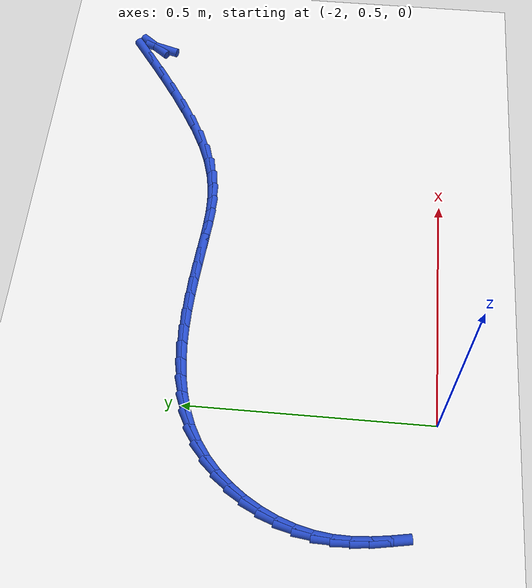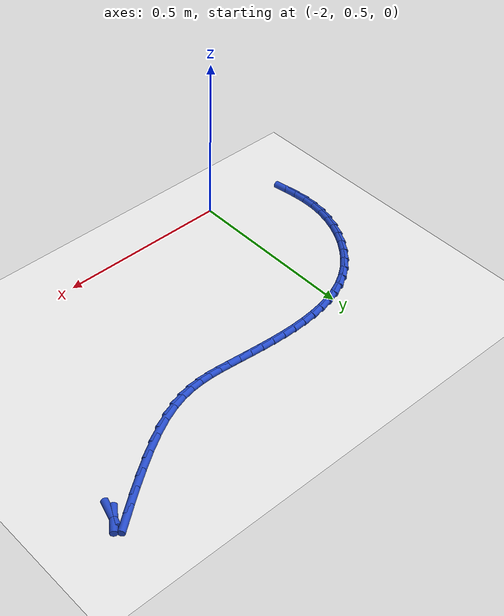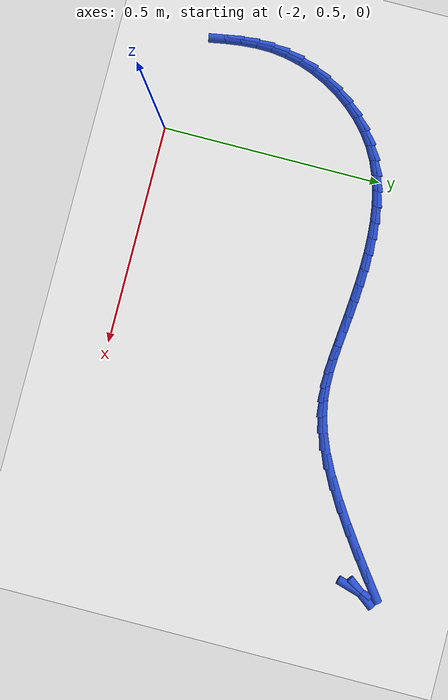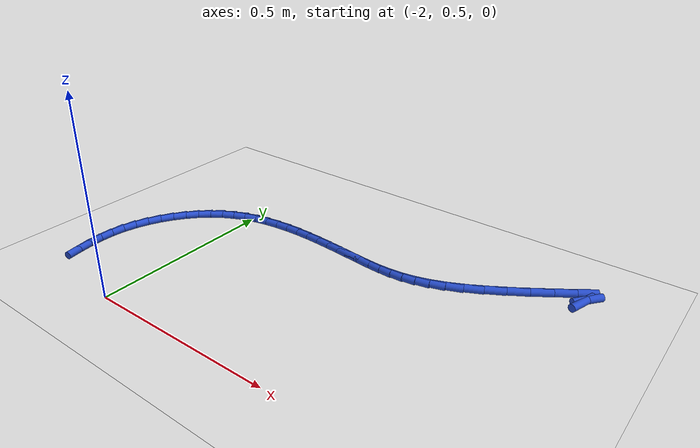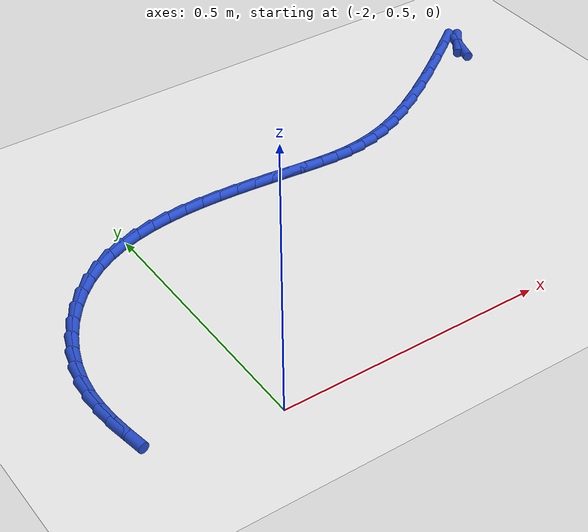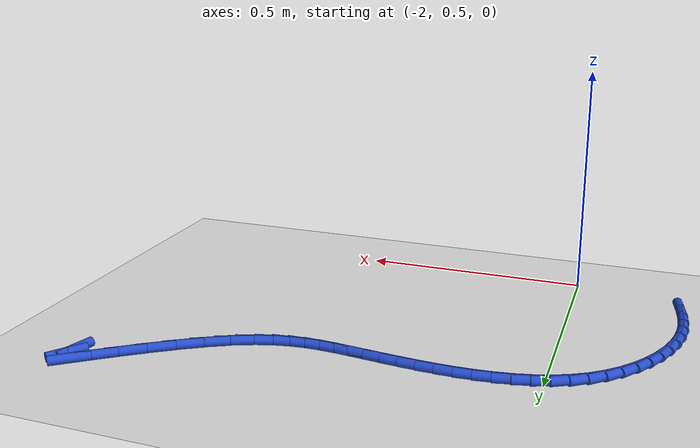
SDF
<sdf version="1.6">
 <world name="default">
  <model name="ground_plane">
   <static>1</static>
   <link name="link">
    <collision name="collision">
     <geometry><plane><normal>0 0 1</normal><size>100 100</size></plane></geometry>
     <surface><friction><ode><mu>100</mu><mu2>50</mu2></ode></friction></surface>
    </collision>
    <visual name="visual">
     <cast_shadows>0</cast_shadows>
     <geometry><plane><normal>0 0 1</normal><size>100 100</size></plane></geometry>
     <material>
      <script><uri>file://media/materials/scripts/gazebo.material</uri><name>Gazebo/WhiteGlow</name></script>
     </material>
    </visual>
   </link>
  </model>
  <model name="line">
   <link name="link_52">
    <pose>-1.1089232236960553 1.1660827350208425 0.01 0 1.57 1.2835550571192555</pose>
    <collision name="collision">
     <geometry><cylinder><radius>0.01</radius><length>0.08</length></cylinder></geometry>
    </collision>
    <visual name="visual">
     <material>
      <script><name>Gazebo/Blue</name><uri>file://media/materials/scripts/gazebo.material</uri></script>
     </material>
     <geometry><cylinder><radius>0.01</radius><length>0.08</length></cylinder></geometry>
    </visual>
   </link>
   <link name="link_53">
    <pose>-1.1039916155793819 1.1827768003942316 0.01 0 1.57 0.9191735991039887</pose>
    <collision name="collision">
     <geometry><cylinder><radius>0.01</radius><length>0.08</length></cylinder></geometry>
    </collision>
    <visual name="visual">
     <material>
      <script><name>Gazebo/Blue</name><uri>file://media/materials/scripts/gazebo.material</uri></script>
     </material>
     <geometry><cylinder><radius>0.01</radius><length>0.08</length></cylinder></geometry>
    </visual>
   </link>
   <link name="link_62">
    <pose>-1.1244872572329374 1.2010781025521085 0.01 0 1.57 0.6388672811564012</pose>
    <collision name="collision">
     <geometry><cylinder><radius>0.01</radius><length>0.08</length></cylinder></geometry>
    </collision>
    <visual name="visual">
     <material>
      <script><name>Gazebo/Blue</name><uri>file://media/materials/scripts/gazebo.material</uri></script>
     </material>
     <geometry><cylinder><radius>0.01</radius><length>0.08</length></cylinder></geometry>
    </visual>
   </link>
   <link name="link_63">
    <pose>-1.1649722309578554 1.1710064847595392 0.01 0 1.57 0.6238630042924764</pose>
    <collision name="collision">
     <geometry><cylinder><radius>0.01</radius><length>0.08</length></cylinder></geometry>
    </collision>
    <visual name="visual">
     <material>
      <script><name>Gazebo/Blue</name><uri>file://media/materials/scripts/gazebo.material</uri></script>
     </material>
     <geometry><cylinder><radius>0.01</radius><length>0.08</length></cylinder></geometry>
    </visual>
   </link>
   <link name="link_64">
    <pose>-1.208779049391771 1.1394762201025725 0.01 0 1.57 0.602401411614445</pose>
    <collision name="collision">
     <geometry><cylinder><radius>0.01</radius><length>0.08</length></cylinder></geometry>
    </collision>
    <visual name="visual">
     <material>
      <script><name>Gazebo/Blue</name><uri>file://media/materials/scripts/gazebo.material</uri></script>
     </material>
     <geometry><cylinder><radius>0.01</radius><length>0.08</length></cylinder></geometry>
    </visual>
   </link>
   <link name="link_65">
    <pose>-1.2544067684531965 1.1080994981370824 0.01 0 1.57 0.5724638955727281</pose>
    <collision name="collision">
     <geometry><cylinder><radius>0.01</radius><length>0.08</length></cylinder></geometry>
    </collision>
    <visual name="visual">
     <material>
      <script><name>Gazebo/Blue</name><uri>file://media/materials/scripts/gazebo.material</uri></script>
     </material>
     <geometry><cylinder><radius>0.01</radius><length>0.08</length></cylinder></geometry>
    </visual>
   </link>
   <link name="link_66">
    <pose>-1.3003544440606425 1.0784885084189424 0.01 0 1.57 0.5300582631437174</pose>
    <collision name="collision">
     <geometry><cylinder><radius>0.01</radius><length>0.08</length></cylinder></geometry>
    </collision>
    <visual name="visual">
     <material>
      <script><name>Gazebo/Blue</name><uri>file://media/materials/scripts/gazebo.material</uri></script>
     </material>
     <geometry><cylinder><radius>0.01</radius><length>0.08</length></cylinder></geometry>
    </visual>
   </link>
   <link name="link_67">
    <pose>-1.3451211321326193 1.0522554405040274 0.01 0 1.57 0.46765626670080074</pose>
    <collision name="collision">
     <geometry><cylinder><radius>0.01</radius><length>0.08</length></cylinder></geometry>
    </collision>
    <visual name="visual">
     <material>
      <script><name>Gazebo/Blue</name><uri>file://media/materials/scripts/gazebo.material</uri></script>
     </material>
     <geometry><cylinder><radius>0.01</radius><length>0.08</length></cylinder></geometry>
    </visual>
   </link>
   <link name="link_68">
    <pose>-1.3872240800891007 1.0309925713047705 0.01 0 1.57 0.3829734330935997</pose>
    <collision name="collision">
     <geometry><cylinder><radius>0.01</radius><length>0.08</length></cylinder></geometry>
    </collision>
    <visual name="visual">
     <material>
      <script><name>Gazebo/Blue</name><uri>file://media/materials/scripts/gazebo.material</uri></script>
     </material>
     <geometry><cylinder><radius>0.01</radius><length>0.08</length></cylinder></geometry>
    </visual>
   </link>
   <link name="link_69">
    <pose>-1.4260347762476588 1.0153571150373355 0.01 0 1.57 0.28738206447069775</pose>
    <collision name="collision">
     <geometry><cylinder><radius>0.01</radius><length>0.08</length></cylinder></geometry>
    </collision>
    <visual name="visual">
     <material>
      <script><name>Gazebo/Blue</name><uri>file://media/materials/scripts/gazebo.material</uri></script>
     </material>
     <geometry><cylinder><radius>0.01</radius><length>0.08</length></cylinder></geometry>
    </visual>
   </link>
   <link name="link_70">
    <pose>-1.4621278611275925 1.004689300574609 0.01 0 1.57 0.1875162440671363</pose>
    <collision name="collision">
     <geometry><cylinder><radius>0.01</radius><length>0.08</length></cylinder></geometry>
    </collision>
    <visual name="visual">
     <material>
      <script><name>Gazebo/Blue</name><uri>file://media/materials/scripts/gazebo.material</uri></script>
     </material>
     <geometry><cylinder><radius>0.01</radius><length>0.08</length></cylinder></geometry>
    </visual>
   </link>
   <link name="link_71">
    <pose>-1.4961685250682584 0.998230239831801 0.01 0 1.57 0.09189598982674581</pose>
    <collision name="collision">
     <geometry><cylinder><radius>0.01</radius><length>0.08</length></cylinder></geometry>
    </collision>
    <visual name="visual">
     <material>
      <script><name>Gazebo/Blue</name><uri>file://media/materials/scripts/gazebo.material</uri></script>
     </material>
     <geometry><cylinder><radius>0.01</radius><length>0.08</length></cylinder></geometry>
    </visual>
   </link>
   <link name="link_72">
    <pose>-1.5288219584090146 0.9952210447241225 0.01 0 1.57 0.009965334823651088</pose>
    <collision name="collision">
     <geometry><cylinder><radius>0.01</radius><length>0.08</length></cylinder></geometry>
    </collision>
    <visual name="visual">
     <material>
      <script><name>Gazebo/Blue</name><uri>file://media/materials/scripts/gazebo.material</uri></script>
     </material>
     <geometry><cylinder><radius>0.01</radius><length>0.08</length></cylinder></geometry>
    </visual>
   </link>
   <link name="link_73">
    <pose>-1.5607533514892191 0.994902827166784 0.01 0 1.57 -0.05058880092744485</pose>
    <collision name="collision">
     <geometry><cylinder><radius>0.01</radius><length>0.08</length></cylinder></geometry>
    </collision>
    <visual name="visual">
     <material>
      <script><name>Gazebo/Blue</name><uri>file://media/materials/scripts/gazebo.material</uri></script>
     </material>
     <geometry><cylinder><radius>0.01</radius><length>0.08</length></cylinder></geometry>
    </visual>
   </link>
   <link name="link_74">
    <pose>-1.59262789464823 0.9965166990749962 0.01 0 1.57 -0.08559166201118545</pose>
    <collision name="collision">
     <geometry><cylinder><radius>0.01</radius><length>0.08</length></cylinder></geometry>
    </collision>
    <visual name="visual">
     <material>
      <script><name>Gazebo/Blue</name><uri>file://media/materials/scripts/gazebo.material</uri></script>
     </material>
     <geometry><cylinder><radius>0.01</radius><length>0.08</length></cylinder></geometry>
    </visual>
   </link>
   <link name="link_75">
    <pose>-1.6251107782254048 0.9993037723639695 0.01 0 1.57 -0.09699294355219688</pose>
    <collision name="collision">
     <geometry><cylinder><radius>0.01</radius><length>0.08</length></cylinder></geometry>
    </collision>
    <visual name="visual">
     <material>
      <script><name>Gazebo/Blue</name><uri>file://media/materials/scripts/gazebo.material</uri></script>
     </material>
     <geometry><cylinder><radius>0.01</radius><length>0.08</length></cylinder></geometry>
    </visual>
   </link>
   <link name="link_76">
    <pose>-1.6587249623088898 1.0025743736650434 0.01 0 1.57 -0.09657853734811621</pose>
    <collision name="collision">
     <geometry><cylinder><radius>0.01</radius><length>0.08</length></cylinder></geometry>
    </collision>
    <visual name="visual">
     <material>
      <script><name>Gazebo/Blue</name><uri>file://media/materials/scripts/gazebo.material</uri></script>
     </material>
     <geometry><cylinder><radius>0.01</radius><length>0.08</length></cylinder></geometry>
    </visual>
   </link>
   <link name="link_77">
    <pose>-1.693389572106803 1.005932678909928 0.01 0 1.57 -0.0879541873327349</pose>
    <collision name="collision">
     <geometry><cylinder><radius>0.01</radius><length>0.08</length></cylinder></geometry>
    </collision>
    <visual name="visual">
     <material>
      <script><name>Gazebo/Blue</name><uri>file://media/materials/scripts/gazebo.material</uri></script>
     </material>
     <geometry><cylinder><radius>0.01</radius><length>0.08</length></cylinder></geometry>
    </visual>
   </link>
   <link name="link_78">
    <pose>-1.7288635165709654 1.0090608314290013 0.01 0 1.57 -0.0714648572897058</pose>
    <collision name="collision">
     <geometry><cylinder><radius>0.01</radius><length>0.08</length></cylinder></geometry>
    </collision>
    <visual name="visual">
     <material>
      <script><name>Gazebo/Blue</name><uri>file://media/materials/scripts/gazebo.material</uri></script>
     </material>
     <geometry><cylinder><radius>0.01</radius><length>0.08</length></cylinder></geometry>
    </visual>
   </link>
   <link name="link_79">
    <pose>-1.7649057034720708 1.0116409751274225 0.01 0 1.57 -0.04710041621450012</pose>
    <collision name="collision">
     <geometry><cylinder><radius>0.01</radius><length>0.08</length></cylinder></geometry>
    </collision>
    <visual name="visual">
     <material>
      <script><name>Gazebo/Blue</name><uri>file://media/materials/scripts/gazebo.material</uri></script>
     </material>
     <geometry><cylinder><radius>0.01</radius><length>0.08</length></cylinder></geometry>
    </visual>
   </link>
   <link name="link_80">
    <pose>-1.801275040580813 1.0133552539103508 0.01 0 1.57 -0.014552587274043826</pose>
    <collision name="collision">
     <geometry><cylinder><radius>0.01</radius><length>0.08</length></cylinder></geometry>
    </collision>
    <visual name="visual">
     <material>
      <script><name>Gazebo/Blue</name><uri>file://media/materials/scripts/gazebo.material</uri></script>
     </material>
     <geometry><cylinder><radius>0.01</radius><length>0.08</length></cylinder></geometry>
    </visual>
   </link>
   <link name="link_81">
    <pose>-1.8377304356678852 1.013885811682946 0.01 0 1.57 0.026743200578914498</pose>
    <collision name="collision">
     <geometry><cylinder><radius>0.01</radius><length>0.08</length></cylinder></geometry>
    </collision>
    <visual name="visual">
     <material>
      <script><name>Gazebo/Blue</name><uri>file://media/materials/scripts/gazebo.material</uri></script>
     </material>
     <geometry><cylinder><radius>0.01</radius><length>0.08</length></cylinder></geometry>
    </visual>
   </link>
   <link name="link_82">
    <pose>-1.8740307965039829 1.0129147923503679 0.01 0 1.57 0.07756339814384612</pose>
    <collision name="collision">
     <geometry><cylinder><radius>0.01</radius><length>0.08</length></cylinder></geometry>
    </collision>
    <visual name="visual">
     <material>
      <script><name>Gazebo/Blue</name><uri>file://media/materials/scripts/gazebo.material</uri></script>
     </material>
     <geometry><cylinder><radius>0.01</radius><length>0.08</length></cylinder></geometry>
    </visual>
   </link>
   <link name="link_83">
    <pose>-1.9099350308597987 1.0101243398177757 0.01 0 1.57 0.13882783263708748</pose>
    <collision name="collision">
     <geometry><cylinder><radius>0.01</radius><length>0.08</length></cylinder></geometry>
    </collision>
    <visual name="visual">
     <material>
      <script><name>Gazebo/Blue</name><uri>file://media/materials/scripts/gazebo.material</uri></script>
     </material>
     <geometry><cylinder><radius>0.01</radius><length>0.08</length></cylinder></geometry>
    </visual>
   </link>
   <link name="link_84">
    <pose>-1.945202046506027 1.0051965979903295 0.01 0 1.57 0.21147917627916138</pose>
    <collision name="collision">
     <geometry><cylinder><radius>0.01</radius><length>0.08</length></cylinder></geometry>
    </collision>
    <visual name="visual">
     <material>
      <script><name>Gazebo/Blue</name><uri>file://media/materials/scripts/gazebo.material</uri></script>
     </material>
     <geometry><cylinder><radius>0.01</radius><length>0.08</length></cylinder></geometry>
    </visual>
   </link>
   <link name="link_85">
    <pose>-1.9795907512133617 0.997813710773188 0.01 0 1.57 0.2962782658552341</pose>
    <collision name="collision">
     <geometry><cylinder><radius>0.01</radius><length>0.08</length></cylinder></geometry>
    </collision>
    <visual name="visual">
     <material>
      <script><name>Gazebo/Blue</name><uri>file://media/materials/scripts/gazebo.material</uri></script>
     </material>
     <geometry><cylinder><radius>0.01</radius><length>0.08</length></cylinder></geometry>
    </visual>
   </link>
   <link name="link_86">
    <pose>-2.012860052752496 0.9876578220715115 0.01 0 1.57 0.3934929147296885</pose>
    <collision name="collision">
     <geometry><cylinder><radius>0.01</radius><length>0.08</length></cylinder></geometry>
    </collision>
    <visual name="visual">
     <material>
      <script><name>Gazebo/Blue</name><uri>file://media/materials/scripts/gazebo.material</uri></script>
     </material>
     <geometry><cylinder><radius>0.01</radius><length>0.08</length></cylinder></geometry>
    </visual>
   </link>
   <link name="link_87">
    <pose>-2.044768858894125 0.9744110757904596 0.01 0 1.57 0.5025009001269432</pose>
    <collision name="collision">
     <geometry><cylinder><radius>0.01</radius><length>0.08</length></cylinder></geometry>
    </collision>
    <visual name="visual">
     <material>
      <script><name>Gazebo/Blue</name><uri>file://media/materials/scripts/gazebo.material</uri></script>
     </material>
     <geometry><cylinder><radius>0.01</radius><length>0.08</length></cylinder></geometry>
    </visual>
   </link>
   <link name="link_88">
    <pose>-2.0750760774089425 0.9577556158351914 0.01 0 1.57 0.6193607877290898</pose>
    <collision name="collision">
     <geometry><cylinder><radius>0.01</radius><length>0.08</length></cylinder></geometry>
    </collision>
    <visual name="visual">
     <material>
      <script><name>Gazebo/Blue</name><uri>file://media/materials/scripts/gazebo.material</uri></script>
     </material>
     <geometry><cylinder><radius>0.01</radius><length>0.08</length></cylinder></geometry>
    </visual>
   </link>
   <link name="link_89">
    <pose>-2.1035389151095023 0.9374631936762431 0.01 0 1.57 0.7314897636028319</pose>
    <collision name="collision">
     <geometry><cylinder><radius>0.01</radius><length>0.08</length></cylinder></geometry>
    </collision>
    <visual name="visual">
     <material>
      <script><name>Gazebo/Blue</name><uri>file://media/materials/scripts/gazebo.material</uri></script>
     </material>
     <geometry><cylinder><radius>0.01</radius><length>0.08</length></cylinder></geometry>
    </visual>
   </link>
   <link name="link_90">
    <pose>-2.129905256608932 0.9137966602273079 0.01 0 1.57 0.8366296568413774</pose>
    <collision name="collision">
     <geometry><cylinder><radius>0.01</radius><length>0.08</length></cylinder></geometry>
    </collision>
    <visual name="visual">
     <material>
      <script><name>Gazebo/Blue</name><uri>file://media/materials/scripts/gazebo.material</uri></script>
     </material>
     <geometry><cylinder><radius>0.01</radius><length>0.08</length></cylinder></geometry>
    </visual>
   </link>
   <link name="link_91">
    <pose>-2.153919809322553 0.887186243219639 0.01 0 1.57 0.9369337929835494</pose>
    <collision name="collision">
     <geometry><cylinder><radius>0.01</radius><length>0.08</length></cylinder></geometry>
    </collision>
    <visual name="visual">
     <material>
      <script><name>Gazebo/Blue</name><uri>file://media/materials/scripts/gazebo.material</uri></script>
     </material>
     <geometry><cylinder><radius>0.01</radius><length>0.08</length></cylinder></geometry>
    </visual>
   </link>
   <link name="link_92">
    <pose>-2.1753272779785413 0.8580623119450281 0.01 0 1.57 1.0346087631309084</pose>
    <collision name="collision">
     <geometry><cylinder><radius>0.01</radius><length>0.08</length></cylinder></geometry>
    </collision>
    <visual name="visual">
     <material>
      <script><name>Gazebo/Blue</name><uri>file://media/materials/scripts/gazebo.material</uri></script>
     </material>
     <geometry><cylinder><radius>0.01</radius><length>0.08</length></cylinder></geometry>
    </visual>
   </link>
   <link name="link_93">
    <pose>-2.193872367305073 0.8268552356952674 0.01 0 1.57 1.1318521778616348</pose>
    <collision name="collision">
     <geometry><cylinder><radius>0.01</radius><length>0.08</length></cylinder></geometry>
    </collision>
    <visual name="visual">
     <material>
      <script><name>Gazebo/Blue</name><uri>file://media/materials/scripts/gazebo.material</uri></script>
     </material>
     <geometry><cylinder><radius>0.01</radius><length>0.08</length></cylinder></geometry>
    </visual>
   </link>
   <link name="link_94">
    <pose>-2.2092997820303233 0.7939953837621498 0.01 0 1.57 1.2308408369947834</pose>
    <collision name="collision">
     <geometry><cylinder><radius>0.01</radius><length>0.08</length></cylinder></geometry>
    </collision>
    <visual name="visual">
     <material>
      <script><name>Gazebo/Blue</name><uri>file://media/materials/scripts/gazebo.material</uri></script>
     </material>
     <geometry><cylinder><radius>0.01</radius><length>0.08</length></cylinder></geometry>
    </visual>
   </link>
   <link name="link_95">
    <pose>-2.221354226882469 0.7599131254374675 0.01 0 1.57 1.3337241377597173</pose>
    <collision name="collision">
     <geometry><cylinder><radius>0.01</radius><length>0.08</length></cylinder></geometry>
    </collision>
    <visual name="visual">
     <material>
      <script><name>Gazebo/Blue</name><uri>file://media/materials/scripts/gazebo.material</uri></script>
     </material>
     <geometry><cylinder><radius>0.01</radius><length>0.08</length></cylinder></geometry>
    </visual>
   </link>
   <link name="link_96">
    <pose>-2.229780406589685 0.7250388300130117 0.01 0 1.57 1.4425577783988266</pose>
    <collision name="collision">
     <geometry><cylinder><radius>0.01</radius><length>0.08</length></cylinder></geometry>
    </collision>
    <visual name="visual">
     <material>
      <script><name>Gazebo/Blue</name><uri>file://media/materials/scripts/gazebo.material</uri></script>
     </material>
     <geometry><cylinder><radius>0.01</radius><length>0.08</length></cylinder></geometry>
    </visual>
   </link>
   <link name="link_97">
    <pose>-2.2343239799842785 0.689802627189423 0.01 0 1.57 1.5507873618837307</pose>
    <collision name="collision">
     <geometry><cylinder><radius>0.01</radius><length>0.08</length></cylinder></geometry>
    </collision>
    <visual name="visual">
     <material>
      <script><name>Gazebo/Blue</name><uri>file://media/materials/scripts/gazebo.material</uri></script>
     </material>
     <geometry><cylinder><radius>0.01</radius><length>0.08</length></cylinder></geometry>
    </visual>
   </link>
   <link name="link_98">
    <pose>-2.2350292495537696 0.6545596523605999 0.01 0 1.57 -1.5034049003268877</pose>
    <collision name="collision">
     <geometry><cylinder><radius>0.01</radius><length>0.08</length></cylinder></geometry>
    </collision>
    <visual name="visual">
     <material>
      <script><name>Gazebo/Blue</name><uri>file://media/materials/scripts/gazebo.material</uri></script>
     </material>
     <geometry><cylinder><radius>0.01</radius><length>0.08</length></cylinder></geometry>
    </visual>
   </link>
   <link name="link_99">
    <pose>-2.232661859579236 0.6194839001970861 0.01 0 1.57 -1.4401442096968256</pose>
    <collision name="collision">
     <geometry><cylinder><radius>0.01</radius><length>0.08</length></cylinder></geometry>
    </collision>
    <visual name="visual">
     <material>
      <script><name>Gazebo/Blue</name><uri>file://media/materials/scripts/gazebo.material</uri></script>
     </material>
     <geometry><cylinder><radius>0.01</radius><length>0.08</length></cylinder></geometry>
    </visual>
   </link>
   <link name="link_100">
    <pose>-2.2280941973625166 0.5847225604509169 0.01 0 1.57 -1.400576479192445</pose>
    <collision name="collision">
     <geometry><cylinder><radius>0.01</radius><length>0.08</length></cylinder></geometry>
    </collision>
    <visual name="visual">
     <material>
      <script><name>Gazebo/Blue</name><uri>file://media/materials/scripts/gazebo.material</uri></script>
     </material>
     <geometry><cylinder><radius>0.01</radius><length>0.08</length></cylinder></geometry>
    </visual>
   </link>
  </model>
 </world>
</sdf>
